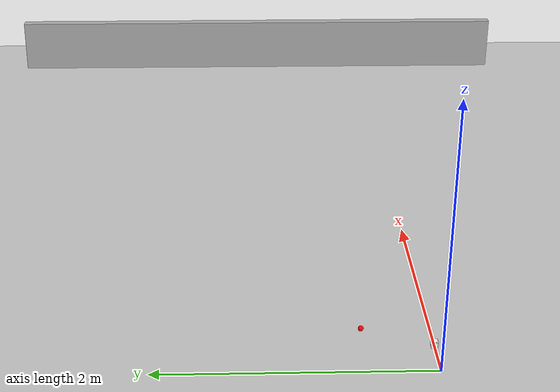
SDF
<?xml version="1.0" ?>
<sdf version='1.10'>
  <world name='empty'>
    <physics name='1ms' type='ignored'>
      <max_step_size>0.0050000000000000001</max_step_size>
      <real_time_factor>1</real_time_factor>
      <real_time_update_rate>500</real_time_update_rate>
    </physics>
    <plugin name='gz::sim::systems::Physics' filename='gz-sim-physics-system'/>
    <plugin name='gz::sim::systems::UserCommands' filename='gz-sim-user-commands-system'/>
    <plugin name='gz::sim::systems::SceneBroadcaster' filename='gz-sim-scene-broadcaster-system'/>
    <plugin name='gz::sim::systems::Contact' filename='gz-sim-contact-system'/>
    <plugin name="gz::sim::systems::Sensors" filename="gz-sim-sensors-system">
      <render_engine>ogre2</render_engine>
    </plugin>
    <gravity>0 0 -9.8000000000000007</gravity>
    <magnetic_field>5.5644999999999998e-06 2.2875799999999999e-05 -4.2388400000000002e-05</magnetic_field>
    <atmosphere type='adiabatic'/>
    <scene>
      <ambient>0.400000006 0.400000006 0.400000006 1</ambient>
      <background>0.699999988 0.699999988 0.699999988 1</background>
      <shadows>true</shadows>
    </scene>
    <gui>
      <camera name='user_camera'>
        <pose>0 0 10 0 -1.5700000000004057 0</pose>
      </camera>
    </gui>

    <model name='ground_plan_a'>
      <static>true</static>
      <link name='link'>
        <collision name='collision'>
          <geometry>
            <plane>
              <normal>0 0 1</normal>
              <size>100 100</size>
            </plane>
          </geometry>
          <surface>
            <friction>
              <ode/>
            </friction>
            <bounce/>
            <contact/>
          </surface>
        </collision>
        <visual name='visual'>
          <geometry>
            <plane>
              <normal>0 0 1</normal>
              <size>100 100</size>
            </plane>
          </geometry>
          <material>
            <ambient>0.800000012 0.800000012 0.800000012 1</ambient>
            <diffuse>0.800000012 0.800000012 0.800000012 1</diffuse>
            <specular>0.800000012 0.800000012 0.800000012 1</specular>
          </material>
        </visual>
        <pose>0 0 0 0 0 0</pose>
        <inertial>
          <pose>0 0 0 0 0 0</pose>
          <mass>1</mass>
          <inertia>
            <ixx>1</ixx>
            <ixy>0</ixy>
            <ixz>0</ixz>
            <iyy>1</iyy>
            <iyz>0</iyz>
            <izz>1</izz>
          </inertia>
        </inertial>
        <enable_wind>false</enable_wind>
      </link>
      <pose>0 0 0 0 0 0</pose>
      <self_collide>false</self_collide>
    </model>
    <model name='box'>
      <pose>5.3351101875305176 1.1423105628707289 0.49999964374511835 2.2249889111800282e-07 3.5031224552452505e-17 -6.3657622294056747e-17</pose>
      <link name='box_link'>
        <inertial>
          <inertia>
            <ixx>0.16666</ixx>
            <ixy>0</ixy>
            <ixz>0</ixz>
            <iyy>0.16666</iyy>
            <iyz>0</iyz>
            <izz>0.16666</izz>
          </inertia>
          <mass>1</mass>
          <pose>0 0 0 0 0 0</pose>
        </inertial>
        <collision name='box_collision'>
          <geometry>
            <box>
              <size>0.10000000000000001 5 0.5</size>
            </box>
          </geometry>
          <surface>
            <friction>
              <ode/>
            </friction>
            <bounce/>
            <contact/>
          </surface>
        </collision>
        <visual name='box_visual'>
          <geometry>
            <box>
              <size>0.10000000000000001 5 0.5</size>
            </box>
          </geometry>
          <material>
            <ambient>0.300000012 0.300000012 0.300000012 1</ambient>
            <diffuse>0.699999988 0.699999988 0.699999988 1</diffuse>
            <specular>1 1 1 1</specular>
          </material>
        </visual>
        <pose>0 0 0 0 0 0</pose>
        <enable_wind>false</enable_wind>
      </link>
      <static>false</static>
      <self_collide>false</self_collide>
    </model>

    <include>
      <uri>model://red_ball</uri>
      <name>red_ball_1</name>
      <pose>0.5 0.5 0.02 0 0 0</pose>
    </include>

    <include>
      <uri>model://aruco_cube</uri>
      <name>aruco_cube_1</name>
      <pose>0.3 0 0.02 0 0 0</pose>
    </include>

    <light name='sun' type='directional'>
      <pose>0 0 10 0 0 0</pose>
      <cast_shadows>true</cast_shadows>
      <intensity>1</intensity>
      <direction>-0.5 0.10000000000000001 -0.90000000000000002</direction>
      <diffuse>0.800000012 0.800000012 0.800000012 1</diffuse>
      <specular>0.200000003 0.200000003 0.200000003 1</specular>
      <attenuation>
        <range>1000</range>
        <linear>0.0099999997764825821</linear>
        <constant>0.89999997615814209</constant>
        <quadratic>0.0010000000474974513</quadratic>
      </attenuation>
      <spot>
        <inner_angle>0</inner_angle>
        <outer_angle>0</outer_angle>
        <falloff>0</falloff>
      </spot>
    </light>
  </world>
</sdf>

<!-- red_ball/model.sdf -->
<sdf version='1.10'>
  <model name='red_ball'>
    <static>false</static>
    <link name='ball_link'>
      <inertial>
        <mass>0.05</mass>
        <inertia>
          <ixx>0.000008</ixx>
          <ixy>0</ixy>
          <ixz>0</ixz>
          <iyy>0.000008</iyy>
          <iyz>0</iyz>
          <izz>0.000008</izz>
        </inertia>
      </inertial>
      <collision name='ball_collision'>
        <geometry>
          <sphere>
            <radius>0.02</radius>
          </sphere>
        </geometry>
        <surface>
          <friction>
            <ode>
              <mu>15</mu>
              <mu2>15</mu2>
            </ode>
          </friction>
        </surface>
      </collision>
      <visual name='ball_visual'>
        <geometry>
          <sphere>
            <radius>0.02</radius>
          </sphere>
        </geometry>
        <material>
          <ambient>1 0 0 1</ambient>
          <diffuse>1 0 0 1</diffuse>
          <specular>0.3 0.3 0.3 1</specular>
        </material>
      </visual>
    </link>
  </model>
</sdf>

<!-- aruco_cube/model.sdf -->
<sdf version='1.10'>
  <model name='aruco_cube'>
    <link name="cube_link">
        <inertial>
            <mass>0.05</mass>
            <inertia>
                <ixx>0.0000208</ixx>
                <iyy>0.0000208</iyy>
                <izz>0.0000208</izz>
                <ixy>0</ixy>
                <ixz>0</ixz>
                <iyz>0</iyz>
            </inertia>
        </inertial>

        <collision name="cube_collision">
            <geometry>
                <box>
                <size>0.05 0.05 0.05</size>
                </box>
            </geometry>

            <surface>
                <friction>
                <ode>
                    <mu>15</mu>
                    <mu2>15</mu2>
                </ode>
                </friction>
                <!-- kp(강성)/kd(감쇠)를 안 정해두면 물리엔진 기본값(무른 편)을 써서 그리퍼
                     손가락이 박스 표면을 파고든 채로 힘 균형을 맞춤(시각적으로 뚫고 들어간
                     것처럼 보임). 값을 높여서 덜 파고들게 함. -->
                <contact>
                <ode>
                    <kp>1e8</kp>
                    <kd>1</kd>
                </ode>
                </contact>
            </surface>
        </collision>

        <visual name="cube_visual">
            <geometry>
                <box>
                <size>0.05 0.05 0.05</size>
                </box>
            </geometry>
            <material>
                <ambient>1 1 1 1</ambient>
                <diffuse>1 1 1 1</diffuse>
                <specular>0.1 0.1 0.1 1</specular>
            </material>
        </visual>

        <visual name="aruco_top_visual">
            <pose>0 0 0.0251 0 0 0</pose>
            <geometry>
                <box>
                    <size>0.04 0.04 0.0001</size>
                </box>
            </geometry>
            <material>
                <ambient>1 1 1 1</ambient>
                <diffuse>1 1 1 1</diffuse>
                <pbr>
                    <metal>
                        <albedo_map>
                            material/textures/aruco_0.png
                        </albedo_map>
                        <roughness>1.0</roughness>
                        <metalness>0.0</metalness>
                    </metal>
                </pbr>
            </material>
        </visual>
        <visual name="aruco_bottom_visual">
            <pose>0 0 -0.0251 0 3.1416 0</pose>
            <geometry>
                <box>
                    <size>0.04 0.04 0.0001</size>
                </box>
            </geometry>
            <material>
                <ambient>1 1 1 1</ambient>
                <diffuse>1 1 1 1</diffuse>
                <pbr>
                    <metal>
                        <albedo_map>
                            material/textures/aruco_0.png
                        </albedo_map>
                        <roughness>1.0</roughness>
                        <metalness>0.0</metalness>
                    </metal>
                </pbr>
            </material>
        </visual>
        <visual name="aruco_posx_visual">
            <pose>0.0251 0 0 0 1.5708 0</pose>
            <geometry>
                <box>
                    <size>0.04 0.04 0.0001</size>
                </box>
            </geometry>
            <material>
                <ambient>1 1 1 1</ambient>
                <diffuse>1 1 1 1</diffuse>
                <pbr>
                    <metal>
                        <albedo_map>
                            material/textures/aruco_0.png
                        </albedo_map>
                        <roughness>1.0</roughness>
                        <metalness>0.0</metalness>
                    </metal>
                </pbr>
            </material>
        </visual>
        <visual name="aruco_negx_visual">
            <pose>-0.0251 0 0 0 -1.5708 0</pose>
            <geometry>
                <box>
                    <size>0.04 0.04 0.0001</size>
                </box>
            </geometry>
            <material>
                <ambient>1 1 1 1</ambient>
                <diffuse>1 1 1 1</diffuse>
                <pbr>
                    <metal>
                        <albedo_map>
                            material/textures/aruco_0.png
                        </albedo_map>
                        <roughness>1.0</roughness>
                        <metalness>0.0</metalness>
                    </metal>
                </pbr>
            </material>
        </visual>
        <visual name="aruco_posy_visual">
            <pose>0 0.0251 0 -1.5708 0 0</pose>
            <geometry>
                <box>
                    <size>0.04 0.04 0.0001</size>
                </box>
            </geometry>
            <material>
                <ambient>1 1 1 1</ambient>
                <diffuse>1 1 1 1</diffuse>
                <pbr>
                    <metal>
                        <albedo_map>
                            material/textures/aruco_0.png
                        </albedo_map>
                        <roughness>1.0</roughness>
                        <metalness>0.0</metalness>
                    </metal>
                </pbr>
            </material>
        </visual>
        <visual name="aruco_negy_visual">
            <pose>0 -0.0251 0 1.5708 0 0</pose>
            <geometry>
                <box>
                    <size>0.04 0.04 0.0001</size>
                </box>
            </geometry>
            <material>
                <ambient>1 1 1 1</ambient>
                <diffuse>1 1 1 1</diffuse>
                <pbr>
                    <metal>
                        <albedo_map>
                            material/textures/aruco_0.png
                        </albedo_map>
                        <roughness>1.0</roughness>
                        <metalness>0.0</metalness>
                    </metal>
                </pbr>
            </material>
        </visual>

    </link>
  </model>
</sdf>
